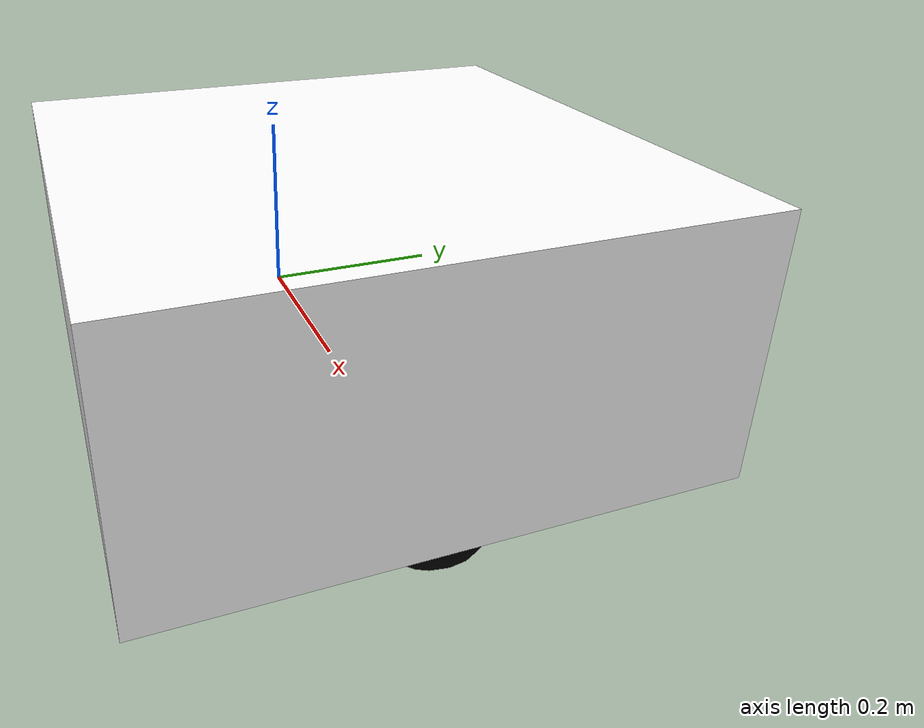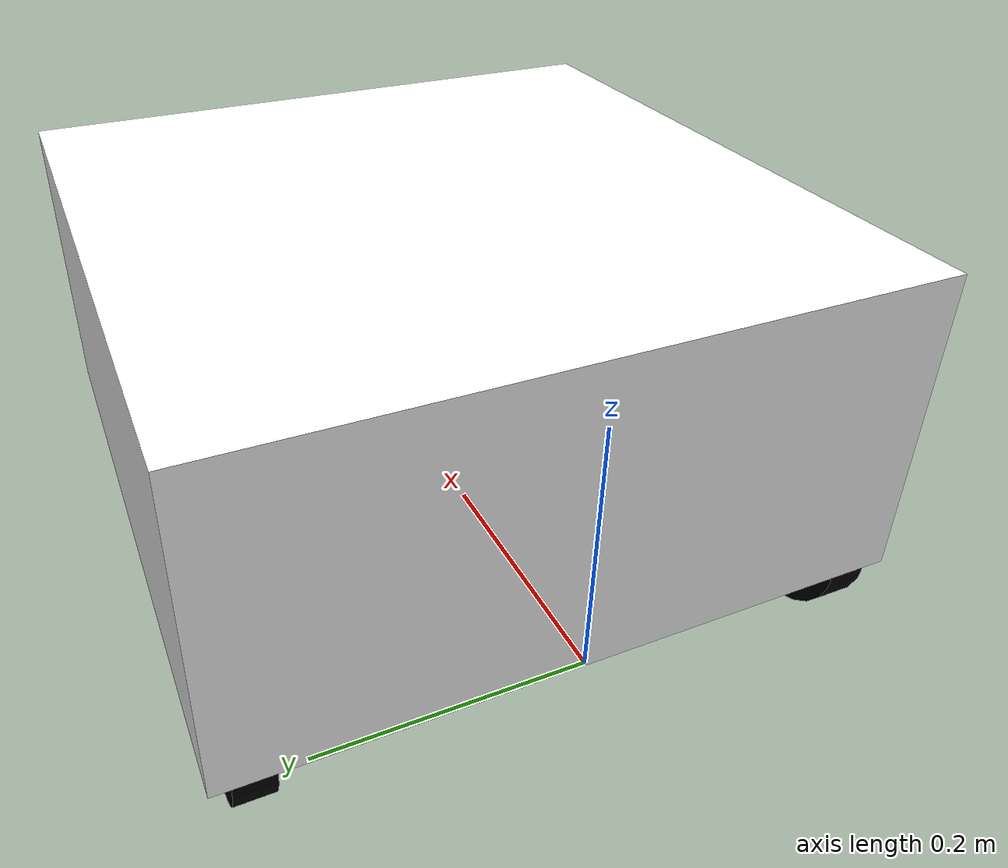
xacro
<?xml version="1.0"?>
<robot xmlns:xacro="http://www.ros.org/wiki/xacro">

<xacro:include filename="inertial_macros.xacro" />

<material name="black">
<color rgba="0 0 0 1"/>
</material>
<material name="blue">
<color rgba="0.2 0.2 1 1"/>
</material>
<material name="white">
<color rgba="1 1 1 1"/>
</material>

<!-- BASE LINK -->

<link name="base_link">
</link>

<!-- NAVI LINK -->
<joint name="navi_joint" type="fixed">
<parent link="base_link"/>
<child link="navi"/>
<origin xyz="0.0625 0 0"/>
</joint>

<link name="navi">
   <visual>
        <origin xyz="0.2 0 0.125"/>
        <material name="white"/>
        <geometry>
            <box size="0.53 0.53 0.25"/>
        </geometry>
   </visual>
   <collision>
        <origin xyz="0.2 0 0.125"/>
        <geometry>
            <box size="0.53 0.53 0.25"/>
        </geometry>
   </collision>
   <xacro:inertial_box mass="15" x="0.53" y="0.53" z="0.25">
    <origin xyz="0.2 0 0.125" rpy="0 0 0"/>
   </xacro:inertial_box>
</link>

<gazebo reference="navi">
        <material>Gazebo/White</material>
</gazebo>

<!-- LEFT WHEEL LINK -->

    <joint name="left_wheel_joint" type="continuous">
        <parent link="base_link"/>
        <child link="left_wheel"/>
        <origin xyz="0.0625 0.235 0" rpy="-${pi/2} 0 0" />
        <axis xyz="0 0 1"/>
        <dynamics damping="0.2"/>
    </joint>

    <link name="left_wheel">
        <visual>
            <geometry>
                <cylinder radius="0.0625" length="0.03"/>
            </geometry>
            <material name="black"/>
        </visual>
        <collision>
            <geometry>
                <cylinder radius="0.0625" length="0.03"/>
            </geometry>
        </collision>
        <xacro:inertial_cylinder mass="0.3" length="0.03" radius="0.0625">
            <origin xyz="0 0 0" rpy="0 0 0"/>
        </xacro:inertial_cylinder>
    </link>

    <gazebo reference="left_wheel">
        <material>Gazebo/Black</material>
    </gazebo>

    <!-- RIGHT WHEEL LINK -->

    <joint name="right_wheel_joint" type="continuous">
        <parent link="base_link"/>
        <child link="right_wheel"/>
        <origin xyz="0.0625 -0.235 0" rpy="${pi/2} 0 0" />
        <axis xyz="0 0 -1"/>
    </joint>

    <link name="right_wheel">
        <visual>
            <geometry>
                <cylinder radius="0.0625" length="0.03"/>
            </geometry>
            <material name="black"/>
        </visual>
        <collision>
            <geometry>
                <cylinder radius="0.0625" length="0.03"/>
            </geometry>
        </collision>
        <xacro:inertial_cylinder mass="0.3" length="0.03" radius="0.0625">
            <origin xyz="0 0 0" rpy="0 0 0"/>
        </xacro:inertial_cylinder>
    </link>

    <gazebo reference="right_wheel">
        <material>Gazebo/Black</material>
    </gazebo>

    <!-- CASTER WHEEL LINK -->

    <joint name="caster_wheel_joint" type="fixed">
        <parent link="navi"/>
        <child link="caster_wheel"/>
        <origin xyz="0.3925 0 0"/>
    </joint>

    <link name="caster_wheel">
        <visual>
            <geometry>
                <sphere radius="0.0625"/>
            </geometry>
            <material name="black"/>
        </visual>
        <collision>
            <geometry>
                <sphere radius="0.0625"/>
            </geometry>
        </collision>
        <xacro:inertial_sphere mass="0.1" radius="0.05">
            <origin xyz="0 0 0" rpy="0 0 0"/>
        </xacro:inertial_sphere>
    </link>

    <gazebo reference="caster_wheel">
        <material>Gazebo/Black</material>
    </gazebo>

</robot>
